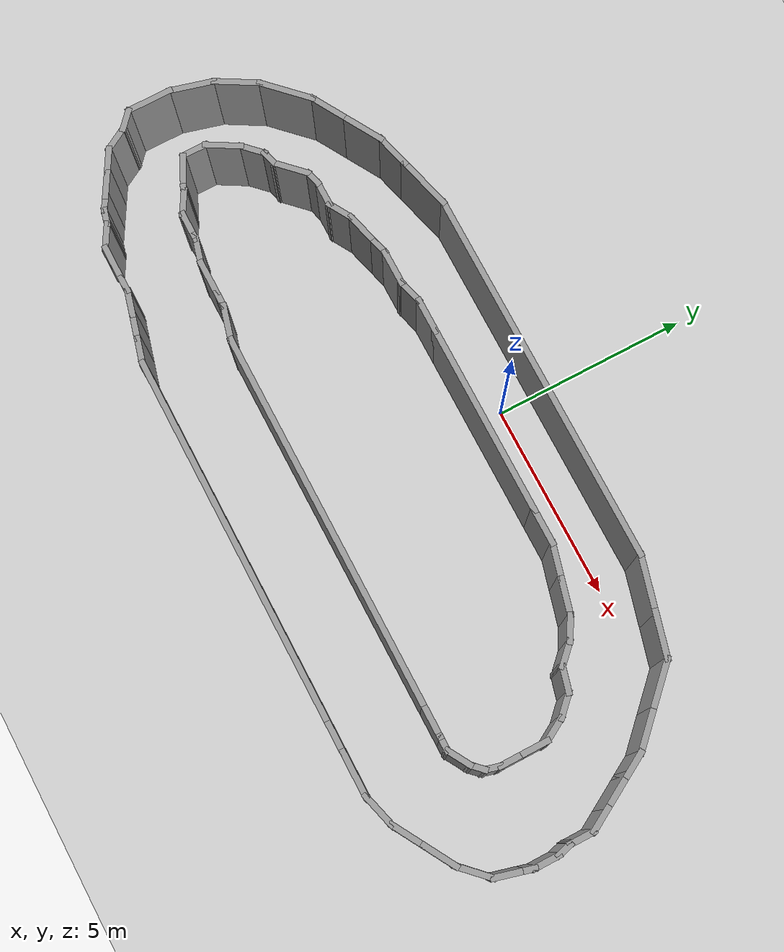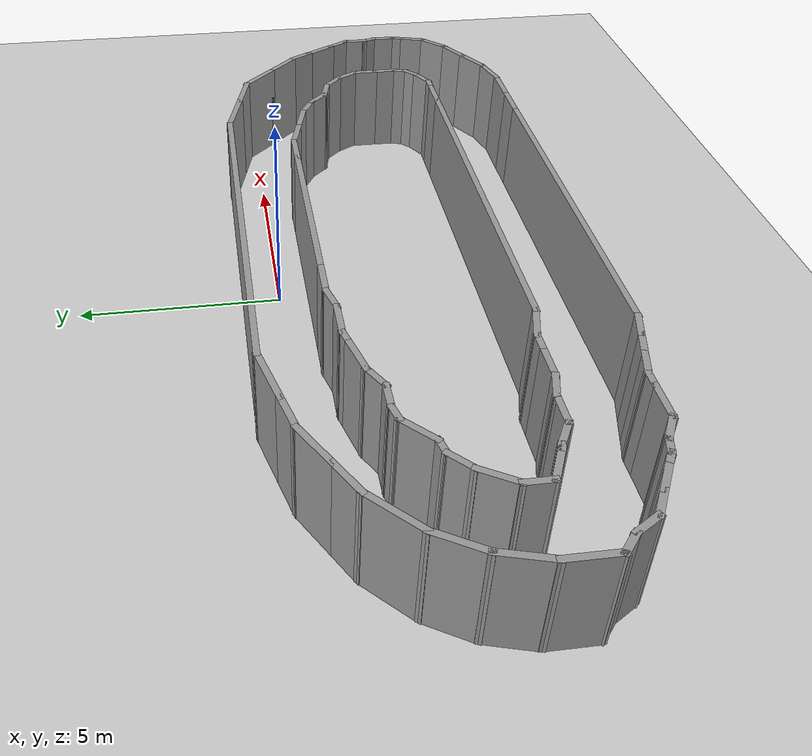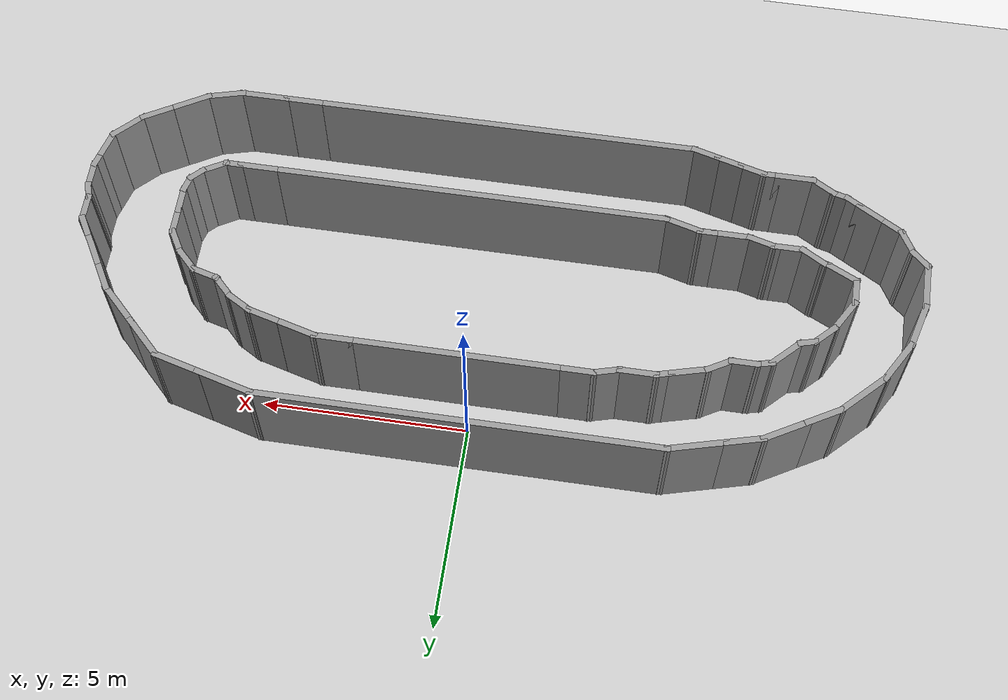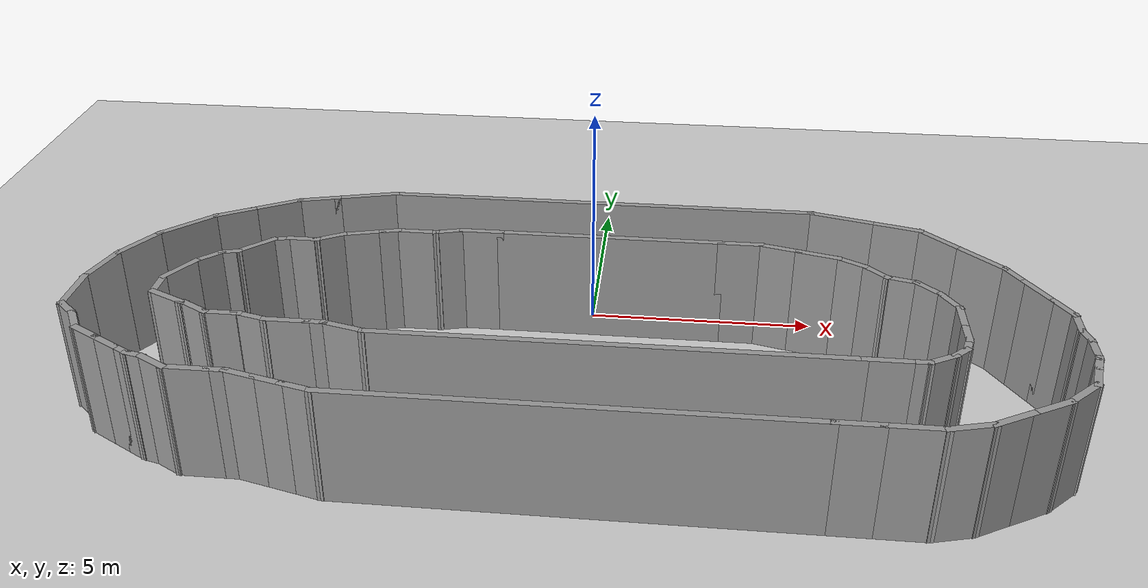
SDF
<sdf version="1.7">
 <world name="default">
  <model name="ground_plane">
   <static>1</static>
   <link name="link">
    <collision name="collision">
     <geometry><plane><normal>0 0 1</normal><size>100 100</size></plane></geometry>
     <surface><friction><ode><mu>100</mu><mu2>50</mu2></ode></friction></surface>
    </collision>
    <visual name="visual">
     <cast_shadows>0</cast_shadows>
     <geometry><plane><normal>0 0 1</normal><size>100 100</size></plane></geometry>
     <material>
      <script><uri>file://media/materials/scripts/gazebo.material</uri><name>Gazebo/Grey</name></script>
     </material>
    </visual>
   </link>
  </model>
  <model name="track">
   <pose>-0.221232 -3.17734 0 0 -0 0</pose>
   <link name="Wall_10">
    <collision name="Wall_10_Collision">
     <geometry><box><size>9.75 0.15 2.5</size></box></geometry>
     <pose>0 0 1.25 0 -0 0</pose>
    </collision>
    <visual name="Wall_10_Visual">
     <pose>0 0 1.25 0 -0 0</pose>
     <geometry><box><size>9.75 0.15 2.5</size></box></geometry>
     <material>
      <script><uri>file://media/materials/scripts/gazebo.material</uri><name>Gazebo/Grey</name></script>
      <ambient>1 1 1 1</ambient>
     </material>
     <meta><layer>0</layer></meta>
    </visual>
    <pose>0.289707 4.04592 0 0 -0 0</pose>
   </link>
   <link name="Wall_11">
    <collision name="Wall_11_Collision">
     <geometry><box><size>1.5 0.15 2.5</size></box></geometry>
     <pose>0 0 1.25 0 -0 0</pose>
    </collision>
    <visual name="Wall_11_Visual">
     <pose>0 0 1.25 0 -0 0</pose>
     <geometry><box><size>1.5 0.15 2.5</size></box></geometry>
     <material>
      <script><uri>file://media/materials/scripts/gazebo.material</uri><name>Gazebo/Grey</name></script>
      <ambient>1 1 1 1</ambient>
     </material>
     <meta><layer>0</layer></meta>
    </visual>
    <pose>5.74171 3.87121 0 0 -0 -0.261799</pose>
   </link>
   <link name="Wall_12">
    <collision name="Wall_12_Collision">
     <geometry><box><size>1.25 0.15 2.5</size></box></geometry>
     <pose>0 0 1.25 0 -0 0</pose>
    </collision>
    <visual name="Wall_12_Visual">
     <pose>0 0 1.25 0 -0 0</pose>
     <geometry><box><size>1.25 0.15 2.5</size></box></geometry>
     <material>
      <script><uri>file://media/materials/scripts/gazebo.material</uri><name>Gazebo/Grey</name></script>
      <ambient>1 1 1 1</ambient>
     </material>
     <meta><layer>0</layer></meta>
    </visual>
    <pose>6.92497 3.55416 0 0 -0 -0.261799</pose>
   </link>
   <link name="Wall_13">
    <collision name="Wall_13_Collision">
     <geometry><box><size>1.25 0.15 2.5</size></box></geometry>
     <pose>0 0 1.25 0 -0 0</pose>
    </collision>
    <visual name="Wall_13_Visual">
     <pose>0 0 1.25 0 -0 0</pose>
     <geometry><box><size>1.25 0.15 2.5</size></box></geometry>
     <material>
      <script><uri>file://media/materials/scripts/gazebo.material</uri><name>Gazebo/Grey</name></script>
      <ambient>1 1 1 1</ambient>
     </material>
     <meta><layer>0</layer></meta>
    </visual>
    <pose>7.84513 3.0229 0 0 -0 -0.785398</pose>
   </link>
   <link name="Wall_14">
    <collision name="Wall_14_Collision">
     <geometry><box><size>1.25 0.15 2.5</size></box></geometry>
     <pose>0 0 1.25 0 -0 0</pose>
    </collision>
    <visual name="Wall_14_Visual">
     <pose>0 0 1.25 0 -0 0</pose>
     <geometry><box><size>1.25 0.15 2.5</size></box></geometry>
     <material>
      <script><uri>file://media/materials/scripts/gazebo.material</uri><name>Gazebo/Grey</name></script>
      <ambient>1 1 1 1</ambient>
     </material>
     <meta><layer>0</layer></meta>
    </visual>
    <pose>8.62295 2.24508 0 0 -0 -0.785398</pose>
   </link>
   <link name="Wall_15">
    <collision name="Wall_15_Collision">
     <geometry><box><size>0.75 0.15 2.5</size></box></geometry>
     <pose>0 0 1.25 0 -0 0</pose>
    </collision>
    <visual name="Wall_15_Visual">
     <pose>0 0 1.25 0 -0 0</pose>
     <geometry><box><size>0.75 0.15 2.5</size></box></geometry>
     <material>
      <script><uri>file://media/materials/scripts/gazebo.material</uri><name>Gazebo/Grey</name></script>
      <ambient>1 1 1 1</ambient>
     </material>
     <meta><layer>0</layer></meta>
    </visual>
    <pose>9.16186 1.59637 0 0 -0 -1.0472</pose>
   </link>
   <link name="Wall_16">
    <collision name="Wall_16_Collision">
     <geometry><box><size>1 0.15 2.5</size></box></geometry>
     <pose>0 0 1.25 0 -0 0</pose>
    </collision>
    <visual name="Wall_16_Visual">
     <pose>0 0 1.25 0 -0 0</pose>
     <geometry><box><size>1 0.15 2.5</size></box></geometry>
     <material>
      <script><uri>file://media/materials/scripts/gazebo.material</uri><name>Gazebo/Grey</name></script>
      <ambient>1 1 1 1</ambient>
     </material>
     <meta><layer>0</layer></meta>
    </visual>
    <pose>9.52436 0.9685 0 0 -0 -1.0472</pose>
   </link>
   <link name="Wall_17">
    <collision name="Wall_17_Collision">
     <geometry><box><size>0.75 0.15 2.5</size></box></geometry>
     <pose>0 0 1.25 0 -0 0</pose>
    </collision>
    <visual name="Wall_17_Visual">
     <pose>0 0 1.25 0 -0 0</pose>
     <geometry><box><size>0.75 0.15 2.5</size></box></geometry>
     <material>
      <script><uri>file://media/materials/scripts/gazebo.material</uri><name>Gazebo/Grey</name></script>
      <ambient>1 1 1 1</ambient>
     </material>
     <meta><layer>0</layer></meta>
    </visual>
    <pose>9.88686 0.340631 0 0 -0 -1.0472</pose>
   </link>
   <link name="Wall_18">
    <collision name="Wall_18_Collision">
     <geometry><box><size>0.75 0.15 2.5</size></box></geometry>
     <pose>0 0 1.25 0 -0 0</pose>
    </collision>
    <visual name="Wall_18_Visual">
     <pose>0 0 1.25 0 -0 0</pose>
     <geometry><box><size>0.75 0.15 2.5</size></box></geometry>
     <material>
      <script><uri>file://media/materials/scripts/gazebo.material</uri><name>Gazebo/Grey</name></script>
      <ambient>1 1 1 1</ambient>
     </material>
     <meta><layer>0</layer></meta>
    </visual>
    <pose>10.0369 -0.219177 0 0 -0 -1.5708</pose>
   </link>
   <link name="Wall_19">
    <collision name="Wall_19_Collision">
     <geometry><box><size>0.5 0.15 2.5</size></box></geometry>
     <pose>0 0 1.25 0 -0 0</pose>
    </collision>
    <visual name="Wall_19_Visual">
     <pose>0 0 1.25 0 -0 0</pose>
     <geometry><box><size>0.5 0.15 2.5</size></box></geometry>
     <material>
      <script><uri>file://media/materials/scripts/gazebo.material</uri><name>Gazebo/Grey</name></script>
      <ambient>1 1 1 1</ambient>
     </material>
     <meta><layer>0</layer></meta>
    </visual>
    <pose>10.0822 -0.688213 0 0 -0 -1.309</pose>
   </link>
   <link name="Wall_2">
    <collision name="Wall_2_Collision">
     <geometry><box><size>1.25 0.15 2.5</size></box></geometry>
     <pose>0 0 1.25 0 -0 0</pose>
    </collision>
    <visual name="Wall_2_Visual">
     <pose>0 0 1.25 0 -0 0</pose>
     <geometry><box><size>1.25 0.15 2.5</size></box></geometry>
     <material>
      <script><uri>file://media/materials/scripts/gazebo.material</uri><name>Gazebo/Grey</name></script>
      <ambient>1 1 1 1</ambient>
     </material>
     <meta><layer>0</layer></meta>
    </visual>
    <pose>-10.1134 -1.01822 0 0 -0 1.5708</pose>
   </link>
   <link name="Wall_20">
    <collision name="Wall_20_Collision">
     <geometry><box><size>0.75 0.15 2.5</size></box></geometry>
     <pose>0 0 1.25 0 -0 0</pose>
    </collision>
    <visual name="Wall_20_Visual">
     <pose>0 0 1.25 0 -0 0</pose>
     <geometry><box><size>0.75 0.15 2.5</size></box></geometry>
     <material>
      <script><uri>file://media/materials/scripts/gazebo.material</uri><name>Gazebo/Grey</name></script>
      <ambient>1 1 1 1</ambient>
     </material>
     <meta><layer>0</layer></meta>
    </visual>
    <pose>10.1274 -1.15725 0 0 -0 -1.5708</pose>
   </link>
   <link name="Wall_21">
    <collision name="Wall_21_Collision">
     <geometry><box><size>0.5 0.15 2.5</size></box></geometry>
     <pose>0 0 1.25 0 -0 0</pose>
    </collision>
    <visual name="Wall_21_Visual">
     <pose>0 0 1.25 0 -0 0</pose>
     <geometry><box><size>0.5 0.15 2.5</size></box></geometry>
     <material>
      <script><uri>file://media/materials/scripts/gazebo.material</uri><name>Gazebo/Grey</name></script>
      <ambient>1 1 1 1</ambient>
     </material>
     <meta><layer>0</layer></meta>
    </visual>
    <pose>10.0822 -1.62629 0 0 -0 -1.8326</pose>
   </link>
   <link name="Wall_22">
    <collision name="Wall_22_Collision">
     <geometry><box><size>0.75 0.15 2.5</size></box></geometry>
     <pose>0 0 1.25 0 -0 0</pose>
    </collision>
    <visual name="Wall_22_Visual">
     <pose>0 0 1.25 0 -0 0</pose>
     <geometry><box><size>0.75 0.15 2.5</size></box></geometry>
     <material>
      <script><uri>file://media/materials/scripts/gazebo.material</uri><name>Gazebo/Grey</name></script>
      <ambient>1 1 1 1</ambient>
     </material>
     <meta><layer>0</layer></meta>
    </visual>
    <pose>9.95921 -2.0851 0 0 -0 -1.8326</pose>
   </link>
   <link name="Wall_23">
    <collision name="Wall_23_Collision">
     <geometry><box><size>1 0.15 2.5</size></box></geometry>
     <pose>0 0 1.25 0 -0 0</pose>
    </collision>
    <visual name="Wall_23_Visual">
     <pose>0 0 1.25 0 -0 0</pose>
     <geometry><box><size>1 0.15 2.5</size></box></geometry>
     <material>
      <script><uri>file://media/materials/scripts/gazebo.material</uri><name>Gazebo/Grey</name></script>
      <ambient>1 1 1 1</ambient>
     </material>
     <meta><layer>0</layer></meta>
    </visual>
    <pose>9.58105 -2.6754 0 0 -0 -2.35619</pose>
   </link>
   <link name="Wall_24">
    <collision name="Wall_24_Collision">
     <geometry><box><size>1 0.15 2.5</size></box></geometry>
     <pose>0 0 1.25 0 -0 0</pose>
    </collision>
    <visual name="Wall_24_Visual">
     <pose>0 0 1.25 0 -0 0</pose>
     <geometry><box><size>1 0.15 2.5</size></box></geometry>
     <material>
      <script><uri>file://media/materials/scripts/gazebo.material</uri><name>Gazebo/Grey</name></script>
      <ambient>1 1 1 1</ambient>
     </material>
     <meta><layer>0</layer></meta>
    </visual>
    <pose>8.91247 -3.18842 0 0 -0 -2.61799</pose>
   </link>
   <link name="Wall_25">
    <collision name="Wall_25_Collision">
     <geometry><box><size>1 0.15 2.5</size></box></geometry>
     <pose>0 0 1.25 0 -0 0</pose>
    </collision>
    <visual name="Wall_25_Visual">
     <pose>0 0 1.25 0 -0 0</pose>
     <geometry><box><size>1 0.15 2.5</size></box></geometry>
     <material>
      <script><uri>file://media/materials/scripts/gazebo.material</uri><name>Gazebo/Grey</name></script>
      <ambient>1 1 1 1</ambient>
     </material>
     <meta><layer>0</layer></meta>
    </visual>
    <pose>8.17635 -3.61342 0 0 -0 -2.61799</pose>
   </link>
   <link name="Wall_26">
    <collision name="Wall_26_Collision">
     <geometry><box><size>1 0.15 2.5</size></box></geometry>
     <pose>0 0 1.25 0 -0 0</pose>
    </collision>
    <visual name="Wall_26_Visual">
     <pose>0 0 1.25 0 -0 0</pose>
     <geometry><box><size>1 0.15 2.5</size></box></geometry>
     <material>
      <script><uri>file://media/materials/scripts/gazebo.material</uri><name>Gazebo/Grey</name></script>
      <ambient>1 1 1 1</ambient>
     </material>
     <meta><layer>0</layer></meta>
    </visual>
    <pose>7.39777 -3.93592 0 0 -0 -2.87979</pose>
   </link>
   <link name="Wall_27">
    <collision name="Wall_27_Collision">
     <geometry><box><size>1.25 0.15 2.5</size></box></geometry>
     <pose>0 0 1.25 0 -0 0</pose>
    </collision>
    <visual name="Wall_27_Visual">
     <pose>0 0 1.25 0 -0 0</pose>
     <geometry><box><size>1.25 0.15 2.5</size></box></geometry>
     <material>
      <script><uri>file://media/materials/scripts/gazebo.material</uri><name>Gazebo/Grey</name></script>
      <ambient>1 1 1 1</ambient>
     </material>
     <meta><layer>0</layer></meta>
    </visual>
    <pose>6.43725 -4.04592 0 0 -0 3.14159</pose>
   </link>
   <link name="Wall_28">
    <collision name="Wall_28_Collision">
     <geometry><box><size>1 0.15 2.5</size></box></geometry>
     <pose>0 0 1.25 0 -0 0</pose>
    </collision>
    <visual name="Wall_28_Visual">
     <pose>0 0 1.25 0 -0 0</pose>
     <geometry><box><size>1 0.15 2.5</size></box></geometry>
     <material>
      <script><uri>file://media/materials/scripts/gazebo.material</uri><name>Gazebo/Grey</name></script>
      <ambient>1 1 1 1</ambient>
     </material>
     <meta><layer>0</layer></meta>
    </visual>
    <pose>5.46225 -4.04592 0 0 -0 3.14159</pose>
   </link>
   <link name="Wall_29">
    <collision name="Wall_29_Collision">
     <geometry><box><size>9.5 0.15 2.5</size></box></geometry>
     <pose>0 0 1.25 0 -0 0</pose>
    </collision>
    <visual name="Wall_29_Visual">
     <pose>0 0 1.25 0 -0 0</pose>
     <geometry><box><size>9.5 0.15 2.5</size></box></geometry>
     <material>
      <script><uri>file://media/materials/scripts/gazebo.material</uri><name>Gazebo/Grey</name></script>
      <ambient>1 1 1 1</ambient>
     </material>
     <meta><layer>0</layer></meta>
    </visual>
    <pose>0.362248 -4.04592 0 0 -0 3.14159</pose>
   </link>
   <link name="Wall_3">
    <collision name="Wall_3_Collision">
     <geometry><box><size>1.25 0.15 2.5</size></box></geometry>
     <pose>0 0 1.25 0 -0 0</pose>
    </collision>
    <visual name="Wall_3_Visual">
     <pose>0 0 1.25 0 -0 0</pose>
     <geometry><box><size>1.25 0.15 2.5</size></box></geometry>
     <material>
      <script><uri>file://media/materials/scripts/gazebo.material</uri><name>Gazebo/Grey</name></script>
      <ambient>1 1 1 1</ambient>
     </material>
     <meta><layer>0</layer></meta>
    </visual>
    <pose>-9.97102 0.063034 0 0 -0 1.309</pose>
   </link>
   <link name="Wall_30">
    <collision name="Wall_30_Collision">
     <geometry><box><size>0.75 0.15 2.5</size></box></geometry>
     <pose>0 0 1.25 0 -0 0</pose>
    </collision>
    <visual name="Wall_30_Visual">
     <pose>0 0 1.25 0 -0 0</pose>
     <geometry><box><size>0.75 0.15 2.5</size></box></geometry>
     <material>
      <script><uri>file://media/materials/scripts/gazebo.material</uri><name>Gazebo/Grey</name></script>
      <ambient>1 1 1 1</ambient>
     </material>
     <meta><layer>0</layer></meta>
    </visual>
    <pose>-4.60253 -3.96827 0 0 -0 2.87979</pose>
   </link>
   <link name="Wall_31">
    <collision name="Wall_31_Collision">
     <geometry><box><size>0.75 0.15 2.5</size></box></geometry>
     <pose>0 0 1.25 0 -0 0</pose>
    </collision>
    <visual name="Wall_31_Visual">
     <pose>0 0 1.25 0 -0 0</pose>
     <geometry><box><size>0.75 0.15 2.5</size></box></geometry>
     <material>
      <script><uri>file://media/materials/scripts/gazebo.material</uri><name>Gazebo/Grey</name></script>
      <ambient>1 1 1 1</ambient>
     </material>
     <meta><layer>0</layer></meta>
    </visual>
    <pose>-5.18209 -3.81298 0 0 -0 2.87979</pose>
   </link>
   <link name="Wall_32">
    <collision name="Wall_32_Collision">
     <geometry><box><size>0.75 0.15 2.5</size></box></geometry>
     <pose>0 0 1.25 0 -0 0</pose>
    </collision>
    <visual name="Wall_32_Visual">
     <pose>0 0 1.25 0 -0 0</pose>
     <geometry><box><size>0.75 0.15 2.5</size></box></geometry>
     <material>
      <script><uri>file://media/materials/scripts/gazebo.material</uri><name>Gazebo/Grey</name></script>
      <ambient>1 1 1 1</ambient>
     </material>
     <meta><layer>0</layer></meta>
    </visual>
    <pose>-5.76164 -3.65769 0 0 -0 2.87979</pose>
   </link>
   <link name="Wall_33">
    <collision name="Wall_33_Collision">
     <geometry><box><size>0.5 0.15 2.5</size></box></geometry>
     <pose>0 0 1.25 0 -0 0</pose>
    </collision>
    <visual name="Wall_33_Visual">
     <pose>0 0 1.25 0 -0 0</pose>
     <geometry><box><size>0.5 0.15 2.5</size></box></geometry>
     <material>
      <script><uri>file://media/materials/scripts/gazebo.material</uri><name>Gazebo/Grey</name></script>
      <ambient>1 1 1 1</ambient>
     </material>
     <meta><layer>0</layer></meta>
    </visual>
    <pose>-6.22642 -3.58004 0 0 -0 3.14159</pose>
   </link>
   <link name="Wall_34">
    <collision name="Wall_34_Collision">
     <geometry><box><size>1 0.15 2.5</size></box></geometry>
     <pose>0 0 1.25 0 -0 0</pose>
    </collision>
    <visual name="Wall_34_Visual">
     <pose>0 0 1.25 0 -0 0</pose>
     <geometry><box><size>1 0.15 2.5</size></box></geometry>
     <material>
      <script><uri>file://media/materials/scripts/gazebo.material</uri><name>Gazebo/Grey</name></script>
      <ambient>1 1 1 1</ambient>
     </material>
     <meta><layer>0</layer></meta>
    </visual>
    <pose>-6.82642 -3.58004 0 0 -0 3.14159</pose>
   </link>
   <link name="Wall_35">
    <collision name="Wall_35_Collision">
     <geometry><box><size>0.75 0.15 2.5</size></box></geometry>
     <pose>0 0 1.25 0 -0 0</pose>
    </collision>
    <visual name="Wall_35_Visual">
     <pose>0 0 1.25 0 -0 0</pose>
     <geometry><box><size>0.75 0.15 2.5</size></box></geometry>
     <material>
      <script><uri>file://media/materials/scripts/gazebo.material</uri><name>Gazebo/Grey</name></script>
      <ambient>1 1 1 1</ambient>
     </material>
     <meta><layer>0</layer></meta>
    </visual>
    <pose>-7.51123 -3.43004 0 0 -0 2.61799</pose>
   </link>
   <link name="Wall_36">
    <collision name="Wall_36_Collision">
     <geometry><box><size>0.5 0.15 2.5</size></box></geometry>
     <pose>0 0 1.25 0 -0 0</pose>
    </collision>
    <visual name="Wall_36_Visual">
     <pose>0 0 1.25 0 -0 0</pose>
     <geometry><box><size>0.5 0.15 2.5</size></box></geometry>
     <material>
      <script><uri>file://media/materials/scripts/gazebo.material</uri><name>Gazebo/Grey</name></script>
      <ambient>1 1 1 1</ambient>
     </material>
     <meta><layer>0</layer></meta>
    </visual>
    <pose>-7.94007 -3.23475 0 0 -0 2.87979</pose>
   </link>
   <link name="Wall_37">
    <collision name="Wall_37_Collision">
     <geometry><box><size>0.5 0.15 2.5</size></box></geometry>
     <pose>0 0 1.25 0 -0 0</pose>
    </collision>
    <visual name="Wall_37_Visual">
     <pose>0 0 1.25 0 -0 0</pose>
     <geometry><box><size>0.5 0.15 2.5</size></box></geometry>
     <material>
      <script><uri>file://media/materials/scripts/gazebo.material</uri><name>Gazebo/Grey</name></script>
      <ambient>1 1 1 1</ambient>
     </material>
     <meta><layer>0</layer></meta>
    </visual>
    <pose>-8.26066 -3.10196 0 0 -0 2.61799</pose>
   </link>
   <link name="Wall_38">
    <collision name="Wall_38_Collision">
     <geometry><box><size>0.75 0.15 2.5</size></box></geometry>
     <pose>0 0 1.25 0 -0 0</pose>
    </collision>
    <visual name="Wall_38_Visual">
     <pose>0 0 1.25 0 -0 0</pose>
     <geometry><box><size>0.75 0.15 2.5</size></box></geometry>
     <material>
      <script><uri>file://media/materials/scripts/gazebo.material</uri><name>Gazebo/Grey</name></script>
      <ambient>1 1 1 1</ambient>
     </material>
     <meta><layer>0</layer></meta>
    </visual>
    <pose>-8.67202 -2.86446 0 0 -0 2.61799</pose>
   </link>
   <link name="Wall_39">
    <collision name="Wall_39_Collision">
     <geometry><box><size>0.75 0.15 2.5</size></box></geometry>
     <pose>0 0 1.25 0 -0 0</pose>
    </collision>
    <visual name="Wall_39_Visual">
     <pose>0 0 1.25 0 -0 0</pose>
     <geometry><box><size>0.75 0.15 2.5</size></box></geometry>
     <material>
      <script><uri>file://media/materials/scripts/gazebo.material</uri><name>Gazebo/Grey</name></script>
      <ambient>1 1 1 1</ambient>
     </material>
     <meta><layer>0</layer></meta>
    </visual>
    <pose>-9.19164 -2.56446 0 0 -0 2.61799</pose>
   </link>
   <link name="Wall_4">
    <collision name="Wall_4_Collision">
     <geometry><box><size>1.25 0.15 2.5</size></box></geometry>
     <pose>0 0 1.25 0 -0 0</pose>
    </collision>
    <visual name="Wall_4_Visual">
     <pose>0 0 1.25 0 -0 0</pose>
     <geometry><box><size>1.25 0.15 2.5</size></box></geometry>
     <material>
      <script><uri>file://media/materials/scripts/gazebo.material</uri><name>Gazebo/Grey</name></script>
      <ambient>1 1 1 1</ambient>
     </material>
     <meta><layer>0</layer></meta>
    </visual>
    <pose>-9.55367 1.07061 0 0 -0 1.0472</pose>
   </link>
   <link name="Wall_40">
    <collision name="Wall_40_Collision">
     <geometry><box><size>0.75 0.15 2.5</size></box></geometry>
     <pose>0 0 1.25 0 -0 0</pose>
    </collision>
    <visual name="Wall_40_Visual">
     <pose>0 0 1.25 0 -0 0</pose>
     <geometry><box><size>0.75 0.15 2.5</size></box></geometry>
     <material>
      <script><uri>file://media/materials/scripts/gazebo.material</uri><name>Gazebo/Grey</name></script>
      <ambient>1 1 1 1</ambient>
     </material>
     <meta><layer>0</layer></meta>
    </visual>
    <pose>-9.60145 -2.15465 0 0 -0 2.0944</pose>
   </link>
   <link name="Wall_41">
    <collision name="Wall_41_Collision">
     <geometry><box><size>0.637513 0.15 2.5</size></box></geometry>
     <pose>0 0 1.25 0 -0 0</pose>
    </collision>
    <visual name="Wall_41_Visual">
     <pose>0 0 1.25 0 -0 0</pose>
     <geometry><box><size>0.637513 0.15 2.5</size></box></geometry>
     <material>
      <script><uri>file://media/materials/scripts/gazebo.material</uri><name>Gazebo/Grey</name></script>
      <ambient>1 1 1 1</ambient>
     </material>
     <meta><layer>0</layer></meta>
    </visual>
    <pose>-9.93241 -1.73153 0 0 -0 2.40743</pose>
   </link>
   <link name="Wall_44">
    <collision name="Wall_44_Collision">
     <geometry><box><size>0.75 0.15 2.5</size></box></geometry>
     <pose>0 0 1.25 0 -0 0</pose>
    </collision>
    <visual name="Wall_44_Visual">
     <pose>0 0 1.25 0 -0 0</pose>
     <geometry><box><size>0.75 0.15 2.5</size></box></geometry>
     <material>
      <script><uri>file://media/materials/scripts/gazebo.material</uri><name>Gazebo/Grey</name></script>
      <ambient>1 1 1 1</ambient>
     </material>
     <meta><layer>0</layer></meta>
    </visual>
    <pose>-8.46711 -0.620568 0 0 -0 1.5708</pose>
   </link>
   <link name="Wall_45">
    <collision name="Wall_45_Collision">
     <geometry><box><size>1 0.15 2.5</size></box></geometry>
     <pose>0 0 1.25 0 -0 0</pose>
    </collision>
    <visual name="Wall_45_Visual">
     <pose>0 0 1.25 0 -0 0</pose>
     <geometry><box><size>1 0.15 2.5</size></box></geometry>
     <material>
      <script><uri>file://media/materials/scripts/gazebo.material</uri><name>Gazebo/Grey</name></script>
      <ambient>1 1 1 1</ambient>
     </material>
     <meta><layer>0</layer></meta>
    </visual>
    <pose>-8.25461 0.047493 0 0 -0 1.0472</pose>
   </link>
   <link name="Wall_46">
    <collision name="Wall_46_Collision">
     <geometry><box><size>0.75 0.15 2.5</size></box></geometry>
     <pose>0 0 1.25 0 -0 0</pose>
    </collision>
    <visual name="Wall_46_Visual">
     <pose>0 0 1.25 0 -0 0</pose>
     <geometry><box><size>0.75 0.15 2.5</size></box></geometry>
     <material>
      <script><uri>file://media/materials/scripts/gazebo.material</uri><name>Gazebo/Grey</name></script>
      <ambient>1 1 1 1</ambient>
     </material>
     <meta><layer>0</layer></meta>
    </visual>
    <pose>-7.82998 0.627685 0 0 -0 0.785398</pose>
   </link>
   <link name="Wall_47">
    <collision name="Wall_47_Collision">
     <geometry><box><size>0.5 0.15 2.5</size></box></geometry>
     <pose>0 0 1.25 0 -0 0</pose>
    </collision>
    <visual name="Wall_47_Visual">
     <pose>0 0 1.25 0 -0 0</pose>
     <geometry><box><size>0.5 0.15 2.5</size></box></geometry>
     <material>
      <script><uri>file://media/materials/scripts/gazebo.material</uri><name>Gazebo/Grey</name></script>
      <ambient>1 1 1 1</ambient>
     </material>
     <meta><layer>0</layer></meta>
    </visual>
    <pose>-7.44881 0.885111 0 0 -0 0.261799</pose>
   </link>
   <link name="Wall_48">
    <collision name="Wall_48_Collision">
     <geometry><box><size>1 0.15 2.5</size></box></geometry>
     <pose>0 0 1.25 0 -0 0</pose>
    </collision>
    <visual name="Wall_48_Visual">
     <pose>0 0 1.25 0 -0 0</pose>
     <geometry><box><size>1 0.15 2.5</size></box></geometry>
     <material>
      <script><uri>file://media/materials/scripts/gazebo.material</uri><name>Gazebo/Grey</name></script>
      <ambient>1 1 1 1</ambient>
     </material>
     <meta><layer>0</layer></meta>
    </visual>
    <pose>-6.97926 1.23092 0 0 -0 0.785398</pose>
   </link>
   <link name="Wall_49">
    <collision name="Wall_49_Collision">
     <geometry><box><size>0.5 0.15 2.5</size></box></geometry>
     <pose>0 0 1.25 0 -0 0</pose>
    </collision>
    <visual name="Wall_49_Visual">
     <pose>0 0 1.25 0 -0 0</pose>
     <geometry><box><size>0.5 0.15 2.5</size></box></geometry>
     <material>
      <script><uri>file://media/materials/scripts/gazebo.material</uri><name>Gazebo/Grey</name></script>
      <ambient>1 1 1 1</ambient>
     </material>
     <meta><layer>0</layer></meta>
    </visual>
    <pose>-6.5097 1.57674 0 0 -0 0.261799</pose>
   </link>
   <link name="Wall_5">
    <collision name="Wall_5_Collision">
     <geometry><box><size>1.5 0.15 2.5</size></box></geometry>
     <pose>0 0 1.25 0 -0 0</pose>
    </collision>
    <visual name="Wall_5_Visual">
     <pose>0 0 1.25 0 -0 0</pose>
     <geometry><box><size>1.5 0.15 2.5</size></box></geometry>
     <material>
      <script><uri>file://media/materials/scripts/gazebo.material</uri><name>Gazebo/Grey</name></script>
      <ambient>1 1 1 1</ambient>
     </material>
     <meta><layer>0</layer></meta>
    </visual>
    <pose>-8.80138 2.02422 0 0 -0 0.785398</pose>
   </link>
   <link name="Wall_50">
    <collision name="Wall_50_Collision">
     <geometry><box><size>0.75 0.15 2.5</size></box></geometry>
     <pose>0 0 1.25 0 -0 0</pose>
    </collision>
    <visual name="Wall_50_Visual">
     <pose>0 0 1.25 0 -0 0</pose>
     <geometry><box><size>0.75 0.15 2.5</size></box></geometry>
     <material>
      <script><uri>file://media/materials/scripts/gazebo.material</uri><name>Gazebo/Grey</name></script>
      <ambient>1 1 1 1</ambient>
     </material>
     <meta><layer>0</layer></meta>
    </visual>
    <pose>-6.04066 1.62203 0 0 -0 0</pose>
   </link>
   <link name="Wall_51">
    <collision name="Wall_51_Collision">
     <geometry><box><size>0.75 0.15 2.5</size></box></geometry>
     <pose>0 0 1.25 0 -0 0</pose>
    </collision>
    <visual name="Wall_51_Visual">
     <pose>0 0 1.25 0 -0 0</pose>
     <geometry><box><size>0.75 0.15 2.5</size></box></geometry>
     <material>
      <script><uri>file://media/materials/scripts/gazebo.material</uri><name>Gazebo/Grey</name></script>
      <ambient>1 1 1 1</ambient>
     </material>
     <meta><layer>0</layer></meta>
    </visual>
    <pose>-5.48085 1.77203 0 0 -0 0.523599</pose>
   </link>
   <link name="Wall_52">
    <collision name="Wall_52_Collision">
     <geometry><box><size>1 0.15 2.5</size></box></geometry>
     <pose>0 0 1.25 0 -0 0</pose>
    </collision>
    <visual name="Wall_52_Visual">
     <pose>0 0 1.25 0 -0 0</pose>
     <geometry><box><size>1 0.15 2.5</size></box></geometry>
     <material>
      <script><uri>file://media/materials/scripts/gazebo.material</uri><name>Gazebo/Grey</name></script>
      <ambient>1 1 1 1</ambient>
     </material>
     <meta><layer>0</layer></meta>
    </visual>
    <pose>-4.81053 2.03203 0 0 -0 0.261799</pose>
   </link>
   <link name="Wall_53">
    <collision name="Wall_53_Collision">
     <geometry><box><size>0.5 0.15 2.5</size></box></geometry>
     <pose>0 0 1.25 0 -0 0</pose>
    </collision>
    <visual name="Wall_53_Visual">
     <pose>0 0 1.25 0 -0 0</pose>
     <geometry><box><size>0.5 0.15 2.5</size></box></geometry>
     <material>
      <script><uri>file://media/materials/scripts/gazebo.material</uri><name>Gazebo/Grey</name></script>
      <ambient>1 1 1 1</ambient>
     </material>
     <meta><layer>0</layer></meta>
    </visual>
    <pose>-4.23097 2.18732 0 0 -0 0.261799</pose>
   </link>
   <link name="Wall_54">
    <collision name="Wall_54_Collision">
     <geometry><box><size>1 0.15 2.5</size></box></geometry>
     <pose>0 0 1.25 0 -0 0</pose>
    </collision>
    <visual name="Wall_54_Visual">
     <pose>0 0 1.25 0 -0 0</pose>
     <geometry><box><size>1 0.15 2.5</size></box></geometry>
     <material>
      <script><uri>file://media/materials/scripts/gazebo.material</uri><name>Gazebo/Grey</name></script>
      <ambient>1 1 1 1</ambient>
     </material>
     <meta><layer>0</layer></meta>
    </visual>
    <pose>-3.63693 2.23261 0 0 -0 0</pose>
   </link>
   <link name="Wall_55">
    <collision name="Wall_55_Collision">
     <geometry><box><size>0.75 0.15 2.5</size></box></geometry>
     <pose>0 0 1.25 0 -0 0</pose>
    </collision>
    <visual name="Wall_55_Visual">
     <pose>0 0 1.25 0 -0 0</pose>
     <geometry><box><size>0.75 0.15 2.5</size></box></geometry>
     <material>
      <script><uri>file://media/materials/scripts/gazebo.material</uri><name>Gazebo/Grey</name></script>
      <ambient>1 1 1 1</ambient>
     </material>
     <meta><layer>0</layer></meta>
    </visual>
    <pose>-2.92216 2.31026 0 0 -0 0.261799</pose>
   </link>
   <link name="Wall_56">
    <collision name="Wall_56_Collision">
     <geometry><box><size>1 0.15 2.5</size></box></geometry>
     <pose>0 0 1.25 0 -0 0</pose>
    </collision>
    <visual name="Wall_56_Visual">
     <pose>0 0 1.25 0 -0 0</pose>
     <geometry><box><size>1 0.15 2.5</size></box></geometry>
     <material>
      <script><uri>file://media/materials/scripts/gazebo.material</uri><name>Gazebo/Grey</name></script>
      <ambient>1 1 1 1</ambient>
     </material>
     <meta><layer>0</layer></meta>
    </visual>
    <pose>-2.20738 2.38791 0 0 -0 0</pose>
   </link>
   <link name="Wall_57">
    <collision name="Wall_57_Collision">
     <geometry><box><size>5 0.15 2.5</size></box></geometry>
     <pose>0 0 1.25 0 -0 0</pose>
    </collision>
    <visual name="Wall_57_Visual">
     <pose>0 0 1.25 0 -0 0</pose>
     <geometry><box><size>5 0.15 2.5</size></box></geometry>
     <material>
      <script><uri>file://media/materials/scripts/gazebo.material</uri><name>Gazebo/Grey</name></script>
      <ambient>1 1 1 1</ambient>
     </material>
     <meta><layer>0</layer></meta>
    </visual>
    <pose>0.642621 2.38791 0 0 -0 0</pose>
   </link>
   <link name="Wall_58">
    <collision name="Wall_58_Collision">
     <geometry><box><size>1 0.15 2.5</size></box></geometry>
     <pose>0 0 1.25 0 -0 0</pose>
    </collision>
    <visual name="Wall_58_Visual">
     <pose>0 0 1.25 0 -0 0</pose>
     <geometry><box><size>1 0.15 2.5</size></box></geometry>
     <material>
      <script><uri>file://media/materials/scripts/gazebo.material</uri><name>Gazebo/Grey</name></script>
      <ambient>1 1 1 1</ambient>
     </material>
     <meta><layer>0</layer></meta>
    </visual>
    <pose>3.49262 2.38791 0 0 -0 0</pose>
   </link>
   <link name="Wall_59">
    <collision name="Wall_59_Collision">
     <geometry><box><size>1 0.15 2.5</size></box></geometry>
     <pose>0 0 1.25 0 -0 0</pose>
    </collision>
    <visual name="Wall_59_Visual">
     <pose>0 0 1.25 0 -0 0</pose>
     <geometry><box><size>1 0.15 2.5</size></box></geometry>
     <material>
      <script><uri>file://media/materials/scripts/gazebo.material</uri><name>Gazebo/Grey</name></script>
      <ambient>1 1 1 1</ambient>
     </material>
     <meta><layer>0</layer></meta>
    </visual>
    <pose>4.32814 2.27791 0 0 -0 -0.261799</pose>
   </link>
   <link name="Wall_6">
    <collision name="Wall_6_Collision">
     <geometry><box><size>1 0.15 2.5</size></box></geometry>
     <pose>0 0 1.25 0 -0 0</pose>
    </collision>
    <visual name="Wall_6_Visual">
     <pose>0 0 1.25 0 -0 0</pose>
     <geometry><box><size>1 0.15 2.5</size></box></geometry>
     <material>
      <script><uri>file://media/materials/scripts/gazebo.material</uri><name>Gazebo/Grey</name></script>
      <ambient>1 1 1 1</ambient>
     </material>
     <meta><layer>0</layer></meta>
    </visual>
    <pose>-7.95602 2.71401 0 0 -0 0.523599</pose>
   </link>
   <link name="Wall_60">
    <collision name="Wall_60_Collision">
     <geometry><box><size>1 0.15 2.5</size></box></geometry>
     <pose>0 0 1.25 0 -0 0</pose>
    </collision>
    <visual name="Wall_60_Visual">
     <pose>0 0 1.25 0 -0 0</pose>
     <geometry><box><size>1 0.15 2.5</size></box></geometry>
     <material>
      <script><uri>file://media/materials/scripts/gazebo.material</uri><name>Gazebo/Grey</name></script>
      <ambient>1 1 1 1</ambient>
     </material>
     <meta><layer>0</layer></meta>
    </visual>
    <pose>5.14918 2.05791 0 0 -0 -0.261799</pose>
   </link>
   <link name="Wall_61">
    <collision name="Wall_61_Collision">
     <geometry><box><size>0.75 0.15 2.5</size></box></geometry>
     <pose>0 0 1.25 0 -0 0</pose>
    </collision>
    <visual name="Wall_61_Visual">
     <pose>0 0 1.25 0 -0 0</pose>
     <geometry><box><size>0.75 0.15 2.5</size></box></geometry>
     <material>
      <script><uri>file://media/materials/scripts/gazebo.material</uri><name>Gazebo/Grey</name></script>
      <ambient>1 1 1 1</ambient>
     </material>
     <meta><layer>0</layer></meta>
    </visual>
    <pose>5.8195 1.79791 0 0 -0 -0.523599</pose>
   </link>
   <link name="Wall_62">
    <collision name="Wall_62_Collision">
     <geometry><box><size>0.75 0.15 2.5</size></box></geometry>
     <pose>0 0 1.25 0 -0 0</pose>
    </collision>
    <visual name="Wall_62_Visual">
     <pose>0 0 1.25 0 -0 0</pose>
     <geometry><box><size>0.75 0.15 2.5</size></box></geometry>
     <material>
      <script><uri>file://media/materials/scripts/gazebo.material</uri><name>Gazebo/Grey</name></script>
      <ambient>1 1 1 1</ambient>
     </material>
     <meta><layer>0</layer></meta>
    </visual>
    <pose>6.29144 1.43578 0 0 -0 -0.785398</pose>
   </link>
   <link name="Wall_63">
    <collision name="Wall_63_Collision">
     <geometry><box><size>0.75 0.15 2.5</size></box></geometry>
     <pose>0 0 1.25 0 -0 0</pose>
    </collision>
    <visual name="Wall_63_Visual">
     <pose>0 0 1.25 0 -0 0</pose>
     <geometry><box><size>0.75 0.15 2.5</size></box></geometry>
     <material>
      <script><uri>file://media/materials/scripts/gazebo.material</uri><name>Gazebo/Grey</name></script>
      <ambient>1 1 1 1</ambient>
     </material>
     <meta><layer>0</layer></meta>
    </visual>
    <pose>6.79335 1.146 0 0 -0 -0.261799</pose>
   </link>
   <link name="Wall_64">
    <collision name="Wall_64_Collision">
     <geometry><box><size>0.75 0.15 2.5</size></box></geometry>
     <pose>0 0 1.25 0 -0 0</pose>
    </collision>
    <visual name="Wall_64_Visual">
     <pose>0 0 1.25 0 -0 0</pose>
     <geometry><box><size>0.75 0.15 2.5</size></box></geometry>
     <material>
      <script><uri>file://media/materials/scripts/gazebo.material</uri><name>Gazebo/Grey</name></script>
      <ambient>1 1 1 1</ambient>
     </material>
     <meta><layer>0</layer></meta>
    </visual>
    <pose>7.29526 0.856226 0 0 -0 -0.785398</pose>
   </link>
   <link name="Wall_65">
    <collision name="Wall_65_Collision">
     <geometry><box><size>0.75 0.15 2.5</size></box></geometry>
     <pose>0 0 1.25 0 -0 0</pose>
    </collision>
    <visual name="Wall_65_Visual">
     <pose>0 0 1.25 0 -0 0</pose>
     <geometry><box><size>0.75 0.15 2.5</size></box></geometry>
     <material>
      <script><uri>file://media/materials/scripts/gazebo.material</uri><name>Gazebo/Grey</name></script>
      <ambient>1 1 1 1</ambient>
     </material>
     <meta><layer>0</layer></meta>
    </visual>
    <pose>7.65739 0.384286 0 0 -0 -1.0472</pose>
   </link>
   <link name="Wall_66">
    <collision name="Wall_66_Collision">
     <geometry><box><size>0.75 0.15 2.5</size></box></geometry>
     <pose>0 0 1.25 0 -0 0</pose>
    </collision>
    <visual name="Wall_66_Visual">
     <pose>0 0 1.25 0 -0 0</pose>
     <geometry><box><size>0.75 0.15 2.5</size></box></geometry>
     <material>
      <script><uri>file://media/materials/scripts/gazebo.material</uri><name>Gazebo/Grey</name></script>
      <ambient>1 1 1 1</ambient>
     </material>
     <meta><layer>0</layer></meta>
    </visual>
    <pose>7.80739 -0.175521 0 0 -0 -1.5708</pose>
   </link>
   <link name="Wall_67">
    <collision name="Wall_67_Collision">
     <geometry><box><size>0.75 0.15 2.5</size></box></geometry>
     <pose>0 0 1.25 0 -0 0</pose>
    </collision>
    <visual name="Wall_67_Visual">
     <pose>0 0 1.25 0 -0 0</pose>
     <geometry><box><size>0.75 0.15 2.5</size></box></geometry>
     <material>
      <script><uri>file://media/materials/scripts/gazebo.material</uri><name>Gazebo/Grey</name></script>
      <ambient>1 1 1 1</ambient>
     </material>
     <meta><layer>0</layer></meta>
    </visual>
    <pose>7.80739 -0.775521 0 0 -0 -1.5708</pose>
   </link>
   <link name="Wall_68">
    <collision name="Wall_68_Collision">
     <geometry><box><size>0.5 0.15 2.5</size></box></geometry>
     <pose>0 0 1.25 0 -0 0</pose>
    </collision>
    <visual name="Wall_68_Visual">
     <pose>0 0 1.25 0 -0 0</pose>
     <geometry><box><size>0.5 0.15 2.5</size></box></geometry>
     <material>
      <script><uri>file://media/materials/scripts/gazebo.material</uri><name>Gazebo/Grey</name></script>
      <ambient>1 1 1 1</ambient>
     </material>
     <meta><layer>0</layer></meta>
    </visual>
    <pose>7.7621 -1.24456 0 0 -0 -1.8326</pose>
   </link>
   <link name="Wall_69">
    <collision name="Wall_69_Collision">
     <geometry><box><size>0.5 0.15 2.5</size></box></geometry>
     <pose>0 0 1.25 0 -0 0</pose>
    </collision>
    <visual name="Wall_69_Visual">
     <pose>0 0 1.25 0 -0 0</pose>
     <geometry><box><size>0.5 0.15 2.5</size></box></geometry>
     <material>
      <script><uri>file://media/materials/scripts/gazebo.material</uri><name>Gazebo/Grey</name></script>
      <ambient>1 1 1 1</ambient>
     </material>
     <meta><layer>0</layer></meta>
    </visual>
    <pose>7.59306 -1.53734 0 0 -0 -2.35619</pose>
   </link>
   <link name="Wall_7">
    <collision name="Wall_7_Collision">
     <geometry><box><size>1.25 0.15 2.5</size></box></geometry>
     <pose>0 0 1.25 0 -0 0</pose>
    </collision>
    <visual name="Wall_7_Visual">
     <pose>0 0 1.25 0 -0 0</pose>
     <geometry><box><size>1.25 0.15 2.5</size></box></geometry>
     <material>
      <script><uri>file://media/materials/scripts/gazebo.material</uri><name>Gazebo/Grey</name></script>
      <ambient>1 1 1 1</ambient>
     </material>
     <meta><layer>0</layer></meta>
    </visual>
    <pose>-7.11164 3.20152 0 0 -0 0.523599</pose>
   </link>
   <link name="Wall_70">
    <collision name="Wall_70_Collision">
     <geometry><box><size>0.75 0.15 2.5</size></box></geometry>
     <pose>0 0 1.25 0 -0 0</pose>
    </collision>
    <visual name="Wall_70_Visual">
     <pose>0 0 1.25 0 -0 0</pose>
     <geometry><box><size>0.75 0.15 2.5</size></box></geometry>
     <material>
      <script><uri>file://media/materials/scripts/gazebo.material</uri><name>Gazebo/Grey</name></script>
      <ambient>1 1 1 1</ambient>
     </material>
     <meta><layer>0</layer></meta>
    </visual>
    <pose>7.20951 -1.81108 0 0 -0 -2.61799</pose>
   </link>
   <link name="Wall_71">
    <collision name="Wall_71_Collision">
     <geometry><box><size>0.5 0.15 2.5</size></box></geometry>
     <pose>0 0 1.25 0 -0 0</pose>
    </collision>
    <visual name="Wall_71_Visual">
     <pose>0 0 1.25 0 -0 0</pose>
     <geometry><box><size>0.5 0.15 2.5</size></box></geometry>
     <material>
      <script><uri>file://media/materials/scripts/gazebo.material</uri><name>Gazebo/Grey</name></script>
      <ambient>1 1 1 1</ambient>
     </material>
     <meta><layer>0</layer></meta>
    </visual>
    <pose>6.7747 -1.96108 0 0 -0 3.14159</pose>
   </link>
   <link name="Wall_72">
    <collision name="Wall_72_Collision">
     <geometry><box><size>1 0.15 2.5</size></box></geometry>
     <pose>0 0 1.25 0 -0 0</pose>
    </collision>
    <visual name="Wall_72_Visual">
     <pose>0 0 1.25 0 -0 0</pose>
     <geometry><box><size>1 0.15 2.5</size></box></geometry>
     <material>
      <script><uri>file://media/materials/scripts/gazebo.material</uri><name>Gazebo/Grey</name></script>
      <ambient>1 1 1 1</ambient>
     </material>
     <meta><layer>0</layer></meta>
    </visual>
    <pose>6.17471 -1.96108 0 0 -0 3.14159</pose>
   </link>
   <link name="Wall_73">
    <collision name="Wall_73_Collision">
     <geometry><box><size>9.75 0.15 2.5</size></box></geometry>
     <pose>0 0 1.25 0 -0 0</pose>
    </collision>
    <visual name="Wall_73_Visual">
     <pose>0 0 1.25 0 -0 0</pose>
     <geometry><box><size>9.75 0.15 2.5</size></box></geometry>
     <material>
      <script><uri>file://media/materials/scripts/gazebo.material</uri><name>Gazebo/Grey</name></script>
      <ambient>1 1 1 1</ambient>
     </material>
     <meta><layer>0</layer></meta>
    </visual>
    <pose>0.949705 -1.96108 0 0 -0 3.14159</pose>
   </link>
   <link name="Wall_74">
    <collision name="Wall_74_Collision">
     <geometry><box><size>1 0.15 2.5</size></box></geometry>
     <pose>0 0 1.25 0 -0 0</pose>
    </collision>
    <visual name="Wall_74_Visual">
     <pose>0 0 1.25 0 -0 0</pose>
     <geometry><box><size>1 0.15 2.5</size></box></geometry>
     <material>
      <script><uri>file://media/materials/scripts/gazebo.material</uri><name>Gazebo/Grey</name></script>
      <ambient>1 1 1 1</ambient>
     </material>
     <meta><layer>0</layer></meta>
    </visual>
    <pose>-4.26081 -1.85109 0 0 -0 2.87979</pose>
   </link>
   <link name="Wall_75">
    <collision name="Wall_75_Collision">
     <geometry><box><size>0.5 0.15 2.5</size></box></geometry>
     <pose>0 0 1.25 0 -0 0</pose>
    </collision>
    <visual name="Wall_75_Visual">
     <pose>0 0 1.25 0 -0 0</pose>
     <geometry><box><size>0.5 0.15 2.5</size></box></geometry>
     <material>
      <script><uri>file://media/materials/scripts/gazebo.material</uri><name>Gazebo/Grey</name></script>
      <ambient>1 1 1 1</ambient>
     </material>
     <meta><layer>0</layer></meta>
    </visual>
    <pose>-4.84633 -1.74109 0 0 -0 3.14159</pose>
   </link>
   <link name="Wall_76">
    <collision name="Wall_76_Collision">
     <geometry><box><size>1 0.15 2.5</size></box></geometry>
     <pose>0 0 1.25 0 -0 0</pose>
    </collision>
    <visual name="Wall_76_Visual">
     <pose>0 0 1.25 0 -0 0</pose>
     <geometry><box><size>1 0.15 2.5</size></box></geometry>
     <material>
      <script><uri>file://media/materials/scripts/gazebo.material</uri><name>Gazebo/Grey</name></script>
      <ambient>1 1 1 1</ambient>
     </material>
     <meta><layer>0</layer></meta>
    </visual>
    <pose>-5.44633 -1.74109 0 0 -0 3.14159</pose>
   </link>
   <link name="Wall_77">
    <collision name="Wall_77_Collision">
     <geometry><box><size>0.75 0.15 2.5</size></box></geometry>
     <pose>0 0 1.25 0 -0 0</pose>
    </collision>
    <visual name="Wall_77_Visual">
     <pose>0 0 1.25 0 -0 0</pose>
     <geometry><box><size>0.75 0.15 2.5</size></box></geometry>
     <material>
      <script><uri>file://media/materials/scripts/gazebo.material</uri><name>Gazebo/Grey</name></script>
      <ambient>1 1 1 1</ambient>
     </material>
     <meta><layer>0</layer></meta>
    </visual>
    <pose>-6.16111 -1.66344 0 0 -0 2.87979</pose>
   </link>
   <link name="Wall_78">
    <collision name="Wall_78_Collision">
     <geometry><box><size>0.25 0.15 2.5</size></box></geometry>
     <pose>0 0 1.25 0 -0 0</pose>
    </collision>
    <visual name="Wall_78_Visual">
     <pose>0 0 1.25 0 -0 0</pose>
     <geometry><box><size>0.25 0.15 2.5</size></box></geometry>
     <material>
      <script><uri>file://media/materials/scripts/gazebo.material</uri><name>Gazebo/Grey</name></script>
      <ambient>1 1 1 1</ambient>
     </material>
     <meta><layer>0</layer></meta>
    </visual>
    <pose>-6.50089 -1.5858 0 0 -0 3.14159</pose>
   </link>
   <link name="Wall_79">
    <collision name="Wall_79_Collision">
     <geometry><box><size>0.75 0.15 2.5</size></box></geometry>
     <pose>0 0 1.25 0 -0 0</pose>
    </collision>
    <visual name="Wall_79_Visual">
     <pose>0 0 1.25 0 -0 0</pose>
     <geometry><box><size>0.75 0.15 2.5</size></box></geometry>
     <material>
      <script><uri>file://media/materials/scripts/gazebo.material</uri><name>Gazebo/Grey</name></script>
      <ambient>1 1 1 1</ambient>
     </material>
     <meta><layer>0</layer></meta>
    </visual>
    <pose>-6.85089 -1.5858 0 0 -0 3.14159</pose>
   </link>
   <link name="Wall_8">
    <collision name="Wall_8_Collision">
     <geometry><box><size>1 0.15 2.5</size></box></geometry>
     <pose>0 0 1.25 0 -0 0</pose>
    </collision>
    <visual name="Wall_8_Visual">
     <pose>0 0 1.25 0 -0 0</pose>
     <geometry><box><size>1 0.15 2.5</size></box></geometry>
     <material>
      <script><uri>file://media/materials/scripts/gazebo.material</uri><name>Gazebo/Grey</name></script>
      <ambient>1 1 1 1</ambient>
     </material>
     <meta><layer>0</layer></meta>
    </visual>
    <pose>-6.22481 3.58651 0 0 -0 0.261799</pose>
   </link>
   <link name="Wall_80">
    <collision name="Wall_80_Collision">
     <geometry><box><size>0.75 0.15 2.5</size></box></geometry>
     <pose>0 0 1.25 0 -0 0</pose>
    </collision>
    <visual name="Wall_80_Visual">
     <pose>0 0 1.25 0 -0 0</pose>
     <geometry><box><size>0.75 0.15 2.5</size></box></geometry>
     <material>
      <script><uri>file://media/materials/scripts/gazebo.material</uri><name>Gazebo/Grey</name></script>
      <ambient>1 1 1 1</ambient>
     </material>
     <meta><layer>0</layer></meta>
    </visual>
    <pose>-7.4107 -1.43579 0 0 -0 2.61799</pose>
   </link>
   <link name="Wall_81">
    <collision name="Wall_81_Collision">
     <geometry><box><size>0.25 0.15 2.5</size></box></geometry>
     <pose>0 0 1.25 0 -0 0</pose>
    </collision>
    <visual name="Wall_81_Visual">
     <pose>0 0 1.25 0 -0 0</pose>
     <geometry><box><size>0.25 0.15 2.5</size></box></geometry>
     <material>
      <script><uri>file://media/materials/scripts/gazebo.material</uri><name>Gazebo/Grey</name></script>
      <ambient>1 1 1 1</ambient>
     </material>
     <meta><layer>0</layer></meta>
    </visual>
    <pose>-7.7188 -1.27285 0 0 -0 2.87979</pose>
   </link>
   <link name="Wall_82">
    <collision name="Wall_82_Collision">
     <geometry><box><size>0.927933 0.15 2.5</size></box></geometry>
     <pose>0 0 1.25 0 -0 0</pose>
    </collision>
    <visual name="Wall_82_Visual">
     <pose>0 0 1.25 0 -0 0</pose>
     <geometry><box><size>0.927933 0.15 2.5</size></box></geometry>
     <material>
      <script><uri>file://media/materials/scripts/gazebo.material</uri><name>Gazebo/Grey</name></script>
      <ambient>1 1 1 1</ambient>
     </material>
     <meta><layer>0</layer></meta>
    </visual>
    <pose>-8.11711 -1.09024 0 0 -0 2.69021</pose>
   </link>
   <link name="Wall_9">
    <collision name="Wall_9_Collision">
     <geometry><box><size>1.5 0.15 2.5</size></box></geometry>
     <pose>0 0 1.25 0 -0 0</pose>
    </collision>
    <visual name="Wall_9_Visual">
     <pose>0 0 1.25 0 -0 0</pose>
     <geometry><box><size>1.5 0.15 2.5</size></box></geometry>
     <material>
      <script><uri>file://media/materials/scripts/gazebo.material</uri><name>Gazebo/Grey</name></script>
      <ambient>1 1 1 1</ambient>
     </material>
     <meta><layer>0</layer></meta>
    </visual>
    <pose>-5.16229 3.87121 0 0 -0 0.261799</pose>
   </link>
   <static>1</static>
  </model>
 </world>
</sdf>
